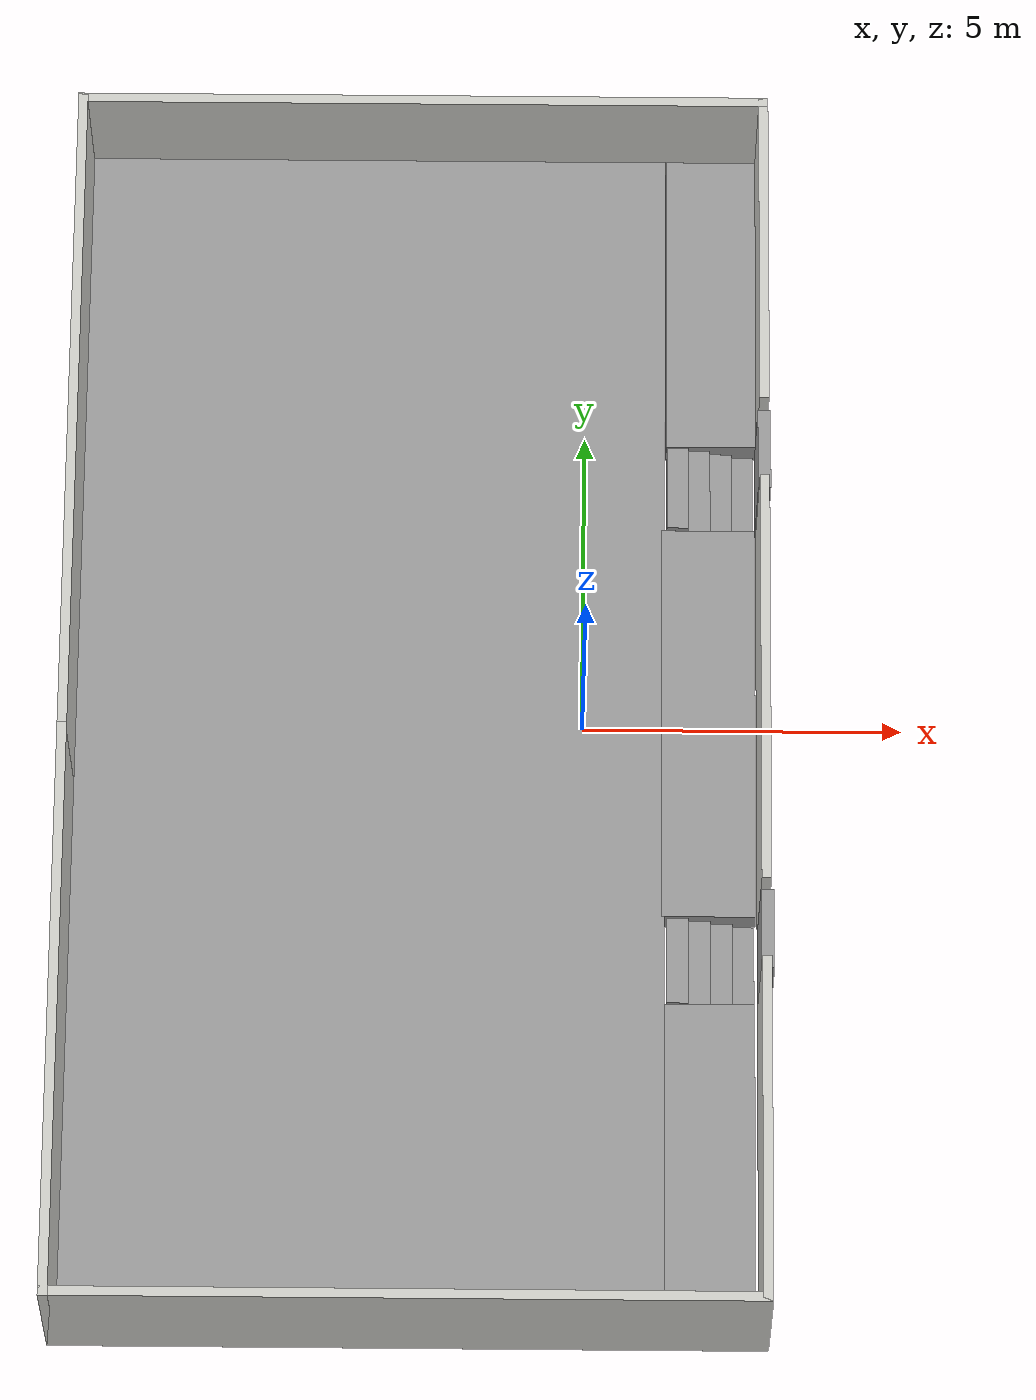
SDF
<?xml version='1.0'?>
<sdf version='1.7'>
  <model name='uni_lab_with_floorjoint'>
    <model name='uni_lab_with_floor'>
      <link name='link_0'>
        <inertial>
          <mass>76.9731</mass>
          <inertia>
            <ixx>2549.54</ixx>
            <ixy>0</ixy>
            <ixz>0</ixz>
            <iyy>549.418</iyy>
            <iyz>0</iyz>
            <izz>3096.72</izz>
          </inertia>
          <pose>0 0 0 0 -0 0</pose>
        </inertial>
        <pose>-3.34953 -0.011442 0.067888 0 -0 0</pose>
        <visual name='visual'>
          <pose>0 0 0 0 -0 0</pose>
          <geometry>
            <box>
              <size>9.2455 19.9323 0.41747</size>
            </box>
          </geometry>
          <material>
            <lighting>1</lighting>
            <script>
              <uri>file://media/materials/scripts/gazebo.material</uri>
              <name>Gazebo/Grey</name>
            </script>
            <shader type='pixel'/>
            <emissive>0 0 0 1</emissive>
          </material>
          <transparency>0</transparency>
          <cast_shadows>1</cast_shadows>
        </visual>
        <collision name='collision'>
          <laser_retro>0</laser_retro>
          <max_contacts>10</max_contacts>
          <pose>0 0 0 0 -0 0</pose>
          <geometry>
            <box>
              <size>9.2455 19.9323 0.41747</size>
            </box>
          </geometry>
          <surface>
            <friction>
              <ode>
                <mu>1</mu>
                <mu2>1</mu2>
                <fdir1>0 0 0</fdir1>
                <slip1>0</slip1>
                <slip2>0</slip2>
              </ode>
              <torsional>
                <coefficient>1</coefficient>
                <patch_radius>0</patch_radius>
                <surface_radius>0</surface_radius>
                <use_patch_radius>1</use_patch_radius>
                <ode>
                  <slip>0</slip>
                </ode>
              </torsional>
            </friction>
            <bounce>
              <restitution_coefficient>0</restitution_coefficient>
              <threshold>1e+06</threshold>
            </bounce>
            <contact>
              <collide_without_contact>0</collide_without_contact>
              <collide_without_contact_bitmask>1</collide_without_contact_bitmask>
              <collide_bitmask>1</collide_bitmask>
              <ode>
                <soft_cfm>0</soft_cfm>
                <soft_erp>0.2</soft_erp>
                <kp>1e+13</kp>
                <kd>1</kd>
                <max_vel>0.01</max_vel>
                <min_depth>0</min_depth>
              </ode>
              <bullet>
                <split_impulse>1</split_impulse>
                <split_impulse_penetration_threshold>-0.01</split_impulse_penetration_threshold>
                <soft_cfm>0</soft_cfm>
                <soft_erp>0.2</soft_erp>
                <kp>1e+13</kp>
                <kd>1</kd>
              </bullet>
            </contact>
          </surface>
        </collision>
      </link>
      <link name='link_1'>
        <inertial>
          <mass>4.46066</mass>
          <inertia>
            <ixx>15.9954</ixx>
            <ixy>0</ixy>
            <ixz>0</ixz>
            <iyy>0.881403</iyy>
            <iyz>0</iyz>
            <izz>16.7164</izz>
          </inertia>
          <pose>0 0 0 0 -0 0</pose>
        </inertial>
        <pose>1.95775 0.035183 0.061316 0 -0 0</pose>
        <visual name='visual'>
          <pose>0 0 0 0 -0 0</pose>
          <geometry>
            <box>
              <size>1.46816 6.5433 0.464388</size>
            </box>
          </geometry>
          <material>
            <lighting>1</lighting>
            <script>
              <uri>file://media/materials/scripts/gazebo.material</uri>
              <name>Gazebo/Grey</name>
            </script>
            <shader type='pixel'/>
            <emissive>0 0 0 1</emissive>
          </material>
          <transparency>0</transparency>
          <cast_shadows>1</cast_shadows>
        </visual>
        <collision name='collision'>
          <laser_retro>0</laser_retro>
          <max_contacts>10</max_contacts>
          <pose>0 0 0 0 -0 0</pose>
          <geometry>
            <box>
              <size>1.46816 6.5433 0.464388</size>
            </box>
          </geometry>
          <surface>
            <friction>
              <ode>
                <mu>1</mu>
                <mu2>1</mu2>
                <fdir1>0 0 0</fdir1>
                <slip1>0</slip1>
                <slip2>0</slip2>
              </ode>
              <torsional>
                <coefficient>1</coefficient>
                <patch_radius>0</patch_radius>
                <surface_radius>0</surface_radius>
                <use_patch_radius>1</use_patch_radius>
                <ode>
                  <slip>0</slip>
                </ode>
              </torsional>
            </friction>
            <bounce>
              <restitution_coefficient>0</restitution_coefficient>
              <threshold>1e+06</threshold>
            </bounce>
            <contact>
              <collide_without_contact>0</collide_without_contact>
              <collide_without_contact_bitmask>1</collide_without_contact_bitmask>
              <collide_bitmask>1</collide_bitmask>
              <ode>
                <soft_cfm>0</soft_cfm>
                <soft_erp>0.2</soft_erp>
                <kp>1e+13</kp>
                <kd>1</kd>
                <max_vel>0.01</max_vel>
                <min_depth>0</min_depth>
              </ode>
              <bullet>
                <split_impulse>1</split_impulse>
                <split_impulse_penetration_threshold>-0.01</split_impulse_penetration_threshold>
                <soft_cfm>0</soft_cfm>
                <soft_erp>0.2</soft_erp>
                <kp>1e+13</kp>
                <kd>1</kd>
              </bullet>
            </contact>
          </surface>
        </collision>
      </link>
      <link name='link_2'>
        <inertial>
          <mass>3.90533</mass>
          <inertia>
            <ixx>8.7364</ixx>
            <ixy>0</ixy>
            <ixz>0</ixz>
            <iyy>0.828184</iyy>
            <iyz>0</iyz>
            <izz>9.40191</izz>
          </inertia>
          <pose>0 0 0 0 -0 0</pose>
        </inertial>
        <pose>2.05163 7.35125 0.029583 0 -0 0</pose>
        <visual name='visual'>
          <pose>0 0 0 0 -0 0</pose>
          <geometry>
            <box>
              <size>1.51487 5.15699 0.499937</size>
            </box>
          </geometry>
          <material>
            <lighting>1</lighting>
            <script>
              <uri>file://media/materials/scripts/gazebo.material</uri>
              <name>Gazebo/Grey</name>
            </script>
            <shader type='pixel'/>
          </material>
          <transparency>0</transparency>
          <cast_shadows>1</cast_shadows>
        </visual>
        <collision name='collision'>
          <laser_retro>0</laser_retro>
          <max_contacts>10</max_contacts>
          <pose>0 0 0 0 -0 0</pose>
          <geometry>
            <box>
              <size>1.51487 5.15699 0.499937</size>
            </box>
          </geometry>
          <surface>
            <friction>
              <ode>
                <mu>1</mu>
                <mu2>1</mu2>
                <fdir1>0 0 0</fdir1>
                <slip1>0</slip1>
                <slip2>0</slip2>
              </ode>
              <torsional>
                <coefficient>1</coefficient>
                <patch_radius>0</patch_radius>
                <surface_radius>0</surface_radius>
                <use_patch_radius>1</use_patch_radius>
                <ode>
                  <slip>0</slip>
                </ode>
              </torsional>
            </friction>
            <bounce>
              <restitution_coefficient>0</restitution_coefficient>
              <threshold>1e+06</threshold>
            </bounce>
            <contact>
              <collide_without_contact>0</collide_without_contact>
              <collide_without_contact_bitmask>1</collide_without_contact_bitmask>
              <collide_bitmask>1</collide_bitmask>
              <ode>
                <soft_cfm>0</soft_cfm>
                <soft_erp>0.2</soft_erp>
                <kp>1e+13</kp>
                <kd>1</kd>
                <max_vel>0.01</max_vel>
                <min_depth>0</min_depth>
              </ode>
              <bullet>
                <split_impulse>1</split_impulse>
                <split_impulse_penetration_threshold>-0.01</split_impulse_penetration_threshold>
                <soft_cfm>0</soft_cfm>
                <soft_erp>0.2</soft_erp>
                <kp>1e+13</kp>
                <kd>1</kd>
              </bullet>
            </contact>
          </surface>
        </collision>
      </link>
      <link name='link_3'>
        <inertial>
          <mass>3.1541</mass>
          <inertia>
            <ixx>7.36274</ixx>
            <ixy>0</ixy>
            <ixz>0</ixz>
            <iyy>0.566125</iyy>
            <iyz>0</iyz>
            <izz>7.83361</izz>
          </inertia>
          <pose>0 0 0 0 -0 0</pose>
        </inertial>
        <pose>1.96654 -7.30469 0.040577 0 -0 0</pose>
        <visual name='visual'>
          <pose>0 0 0 0 -0 0</pose>
          <geometry>
            <box>
              <size>1.40452 5.2755 0.425672</size>
            </box>
          </geometry>
          <material>
            <lighting>1</lighting>
            <script>
              <uri>file://media/materials/scripts/gazebo.material</uri>
              <name>Gazebo/Grey</name>
            </script>
            <shader type='pixel'/>
          </material>
          <transparency>0</transparency>
          <cast_shadows>1</cast_shadows>
        </visual>
        <collision name='collision'>
          <laser_retro>0</laser_retro>
          <max_contacts>10</max_contacts>
          <pose>0 0 0 0 -0 0</pose>
          <geometry>
            <box>
              <size>1.40452 5.2755 0.425672</size>
            </box>
          </geometry>
          <surface>
            <friction>
              <ode>
                <mu>1</mu>
                <mu2>1</mu2>
                <fdir1>0 0 0</fdir1>
                <slip1>0</slip1>
                <slip2>0</slip2>
              </ode>
              <torsional>
                <coefficient>1</coefficient>
                <patch_radius>0</patch_radius>
                <surface_radius>0</surface_radius>
                <use_patch_radius>1</use_patch_radius>
                <ode>
                  <slip>0</slip>
                </ode>
              </torsional>
            </friction>
            <bounce>
              <restitution_coefficient>0</restitution_coefficient>
              <threshold>1e+06</threshold>
            </bounce>
            <contact>
              <collide_without_contact>0</collide_without_contact>
              <collide_without_contact_bitmask>1</collide_without_contact_bitmask>
              <collide_bitmask>1</collide_bitmask>
              <ode>
                <soft_cfm>0</soft_cfm>
                <soft_erp>0.2</soft_erp>
                <kp>1e+13</kp>
                <kd>1</kd>
                <max_vel>0.01</max_vel>
                <min_depth>0</min_depth>
              </ode>
              <bullet>
                <split_impulse>1</split_impulse>
                <split_impulse_penetration_threshold>-0.01</split_impulse_penetration_threshold>
                <soft_cfm>0</soft_cfm>
                <soft_erp>0.2</soft_erp>
                <kp>1e+13</kp>
                <kd>1</kd>
              </bullet>
            </contact>
          </surface>
        </collision>
      </link>
      <model name='uni_lab'>
        <pose>-2.6264 -0.070305 -0.199364 0 -0 0</pose>
        <link name='Door_0'>
          <collision name='Door_0_Collision'>
            <geometry>
              <box>
                <size>1.27502 0.2 2</size>
              </box>
            </geometry>
            <pose>0 0 1 0 -0 0</pose>
          </collision>
          <visual name='Door_0_Visual'>
            <pose>0 0 1 0 -0 0</pose>
            <geometry>
              <box>
                <size>1.27502 0.2 2</size>
              </box>
            </geometry>
            <material>
              <script>
                <uri>file://media/materials/scripts/gazebo.material</uri>
                <name>Gazebo/Grey</name>
              </script>
            </material>
          </visual>
          <pose>5.45453 -3.91442 0 0 -0 1.57588</pose>
        </link>
        <link name='Door_1'>
          <collision name='Door_1_Collision'>
            <geometry>
              <box>
                <size>1.32225 0.2 2</size>
              </box>
            </geometry>
            <pose>0 0 1 0 -0 0</pose>
          </collision>
          <visual name='Door_1_Visual'>
            <pose>0 0 1 0 -0 0</pose>
            <geometry>
              <box>
                <size>1.32225 0.2 2</size>
              </box>
            </geometry>
            <material>
              <script>
                <uri>file://media/materials/scripts/gazebo.material</uri>
                <name>Gazebo/Grey</name>
              </script>
            </material>
          </visual>
          <pose>5.43535 4.13457 0 0 -0 1.57249</pose>
        </link>
        <link name='Stairs_5'>
          <visual name='Stairs_5_Visual_0'>
            <pose>5.13269 4.12145 0.0625 0 -0 -1.5708</pose>
            <geometry>
              <box>
                <size>1.39 0.3425 0.125</size>
              </box>
            </geometry>
            <material>
              <script>
                <uri>file://media/materials/scripts/gazebo.material</uri>
                <name>Gazebo/Grey</name>
              </script>
              <ambient>1 1 1 1</ambient>
            </material>
            <meta>
              <layer>0</layer>
            </meta>
          </visual>
          <collision name='Stairs_5_Collision_0'>
            <geometry>
              <box>
                <size>1.39 0.3425 0.125</size>
              </box>
            </geometry>
            <pose>5.13269 4.12145 0.0625 0 -0 -1.5708</pose>
          </collision>
          <visual name='Stairs_5_Visual_1'>
            <pose>4.79019 4.12145 0.1875 0 -0 -1.5708</pose>
            <geometry>
              <box>
                <size>1.39 0.3425 0.125</size>
              </box>
            </geometry>
            <material>
              <script>
                <uri>file://media/materials/scripts/gazebo.material</uri>
                <name>Gazebo/Grey</name>
              </script>
              <ambient>1 1 1 1</ambient>
            </material>
            <meta>
              <layer>0</layer>
            </meta>
          </visual>
          <collision name='Stairs_5_Collision_1'>
            <geometry>
              <box>
                <size>1.39 0.3425 0.125</size>
              </box>
            </geometry>
            <pose>4.79019 4.12145 0.1875 0 -0 -1.5708</pose>
          </collision>
          <visual name='Stairs_5_Visual_2'>
            <pose>4.44769 4.12145 0.3125 0 -0 -1.5708</pose>
            <geometry>
              <box>
                <size>1.39 0.3425 0.125</size>
              </box>
            </geometry>
            <material>
              <script>
                <uri>file://media/materials/scripts/gazebo.material</uri>
                <name>Gazebo/Grey</name>
              </script>
              <ambient>1 1 1 1</ambient>
            </material>
            <meta>
              <layer>0</layer>
            </meta>
          </visual>
          <collision name='Stairs_5_Collision_2'>
            <geometry>
              <box>
                <size>1.39 0.3425 0.125</size>
              </box>
            </geometry>
            <pose>4.44769 4.12145 0.3125 0 -0 -1.5708</pose>
          </collision>
          <visual name='Stairs_5_Visual_3'>
            <pose>4.10519 4.12145 0.4375 0 -0 -1.5708</pose>
            <geometry>
              <box>
                <size>1.39 0.3425 0.125</size>
              </box>
            </geometry>
            <material>
              <script>
                <uri>file://media/materials/scripts/gazebo.material</uri>
                <name>Gazebo/Grey</name>
              </script>
              <ambient>1 1 1 1</ambient>
            </material>
            <meta>
              <layer>0</layer>
            </meta>
          </visual>
          <collision name='Stairs_5_Collision_3'>
            <geometry>
              <box>
                <size>1.39 0.3425 0.125</size>
              </box>
            </geometry>
            <pose>4.10519 4.12145 0.4375 0 -0 -1.5708</pose>
          </collision>
        </link>
        <link name='Stairs_6'>
          <visual name='Stairs_6_Visual_0'>
            <pose>5.12481 -3.89959 0.0625 0 0 -1.5708</pose>
            <geometry>
              <box>
                <size>1.39 0.3425 0.125</size>
              </box>
            </geometry>
            <material>
              <script>
                <uri>file://media/materials/scripts/gazebo.material</uri>
                <name>Gazebo/Grey</name>
              </script>
              <ambient>1 1 1 1</ambient>
            </material>
            <meta>
              <layer>0</layer>
            </meta>
          </visual>
          <collision name='Stairs_6_Collision_0'>
            <geometry>
              <box>
                <size>1.39 0.3425 0.125</size>
              </box>
            </geometry>
            <pose>5.12481 -3.89959 0.0625 0 0 -1.5708</pose>
          </collision>
          <visual name='Stairs_6_Visual_1'>
            <pose>4.78231 -3.89959 0.1875 0 0 -1.5708</pose>
            <geometry>
              <box>
                <size>1.39 0.3425 0.125</size>
              </box>
            </geometry>
            <material>
              <script>
                <uri>file://media/materials/scripts/gazebo.material</uri>
                <name>Gazebo/Grey</name>
              </script>
              <ambient>1 1 1 1</ambient>
            </material>
            <meta>
              <layer>0</layer>
            </meta>
          </visual>
          <collision name='Stairs_6_Collision_1'>
            <geometry>
              <box>
                <size>1.39 0.3425 0.125</size>
              </box>
            </geometry>
            <pose>4.78231 -3.89959 0.1875 0 0 -1.5708</pose>
          </collision>
          <visual name='Stairs_6_Visual_2'>
            <pose>4.43981 -3.89959 0.3125 0 0 -1.5708</pose>
            <geometry>
              <box>
                <size>1.39 0.3425 0.125</size>
              </box>
            </geometry>
            <material>
              <script>
                <uri>file://media/materials/scripts/gazebo.material</uri>
                <name>Gazebo/Grey</name>
              </script>
              <ambient>1 1 1 1</ambient>
            </material>
            <meta>
              <layer>0</layer>
            </meta>
          </visual>
          <collision name='Stairs_6_Collision_2'>
            <geometry>
              <box>
                <size>1.39 0.3425 0.125</size>
              </box>
            </geometry>
            <pose>4.43981 -3.89959 0.3125 0 0 -1.5708</pose>
          </collision>
          <visual name='Stairs_6_Visual_3'>
            <pose>4.09731 -3.89959 0.4375 0 0 -1.5708</pose>
            <geometry>
              <box>
                <size>1.39 0.3425 0.125</size>
              </box>
            </geometry>
            <material>
              <script>
                <uri>file://media/materials/scripts/gazebo.material</uri>
                <name>Gazebo/Grey</name>
              </script>
              <ambient>1 1 1 1</ambient>
            </material>
            <meta>
              <layer>0</layer>
            </meta>
          </visual>
          <collision name='Stairs_6_Collision_3'>
            <geometry>
              <box>
                <size>1.39 0.3425 0.125</size>
              </box>
            </geometry>
            <pose>4.09731 -3.89959 0.4375 0 0 -1.5708</pose>
          </collision>
        </link>
        <link name='Wall_11'>
          <collision name='Wall_11_Collision'>
            <geometry>
              <box>
                <size>11 0.15 2.5</size>
              </box>
            </geometry>
            <pose>0 0 1.25 0 -0 0</pose>
          </collision>
          <visual name='Wall_11_Visual'>
            <pose>0 0 1.25 0 -0 0</pose>
            <geometry>
              <box>
                <size>11 0.15 2.5</size>
              </box>
            </geometry>
            <material>
              <script>
                <uri>file://media/materials/scripts/gazebo.material</uri>
                <name>Gazebo/CeilingTiled</name>
              </script>
              <ambient>1 1 1 1</ambient>
            </material>
            <meta>
              <layer>0</layer>
            </meta>
          </visual>
          <pose>-9.1e-05 9.975 0 0 -0 0</pose>
        </link>
        <link name='Wall_13'>
          <collision name='Wall_13_Collision'>
            <geometry>
              <box>
                <size>5.5 0.15 2.5</size>
              </box>
            </geometry>
            <pose>0 0 1.25 0 -0 0</pose>
          </collision>
          <visual name='Wall_13_Visual'>
            <pose>0 0 1.25 0 -0 0</pose>
            <geometry>
              <box>
                <size>5.5 0.15 2.5</size>
              </box>
            </geometry>
            <material>
              <script>
                <uri>file://media/materials/scripts/gazebo.material</uri>
                <name>Gazebo/CeilingTiled</name>
              </script>
              <ambient>1 1 1 1</ambient>
            </material>
            <meta>
              <layer>0</layer>
            </meta>
          </visual>
          <pose>5.42491 -7.3 0 0 -0 1.5708</pose>
        </link>
        <link name='Wall_15'>
          <collision name='Wall_15_Collision'>
            <geometry>
              <box>
                <size>5.25 0.15 2.5</size>
              </box>
            </geometry>
            <pose>0 0 1.25 0 -0 0</pose>
          </collision>
          <visual name='Wall_15_Visual'>
            <pose>0 0 1.25 0 -0 0</pose>
            <geometry>
              <box>
                <size>5.25 0.15 2.5</size>
              </box>
            </geometry>
            <material>
              <script>
                <uri>file://media/materials/scripts/gazebo.material</uri>
                <name>Gazebo/CeilingTiled</name>
              </script>
              <ambient>1 1 1 1</ambient>
            </material>
            <meta>
              <layer>0</layer>
            </meta>
          </visual>
          <pose>5.42491 7.425 0 0 -0 -1.5708</pose>
        </link>
        <link name='Wall_23'>
          <collision name='Wall_23_Collision'>
            <geometry>
              <box>
                <size>6.75 0.15 2.5</size>
              </box>
            </geometry>
            <pose>0 0 1.25 0 -0 0</pose>
          </collision>
          <visual name='Wall_23_Visual'>
            <pose>0 0 1.25 0 -0 0</pose>
            <geometry>
              <box>
                <size>6.75 0.15 2.5</size>
              </box>
            </geometry>
            <material>
              <script>
                <uri>file://media/materials/scripts/gazebo.material</uri>
                <name>Gazebo/CeilingTiled</name>
              </script>
              <ambient>1 1 1 1</ambient>
            </material>
            <meta>
              <layer>0</layer>
            </meta>
          </visual>
          <pose>5.42509 0.096254 0 0 -0 -1.5708</pose>
        </link>
        <link name='Wall_5'>
          <collision name='Wall_5_Collision'>
            <geometry>
              <box>
                <size>9.25 0.15 2.5</size>
              </box>
            </geometry>
            <pose>0 0 1.25 0 -0 0</pose>
          </collision>
          <visual name='Wall_5_Visual'>
            <pose>0 0 1.25 0 -0 0</pose>
            <geometry>
              <box>
                <size>9.25 0.15 2.5</size>
              </box>
            </geometry>
            <material>
              <script>
                <uri>file://media/materials/scripts/gazebo.material</uri>
                <name>Gazebo/CeilingTiled</name>
              </script>
              <ambient>1 1 1 1</ambient>
            </material>
            <meta>
              <layer>0</layer>
            </meta>
          </visual>
          <pose>-5.42509 -5.425 0 0 -0 -1.5708</pose>
        </link>
        <link name='Wall_7'>
          <collision name='Wall_7_Collision'>
            <geometry>
              <box>
                <size>11 0.15 2.5</size>
              </box>
            </geometry>
            <pose>0 0 1.25 0 -0 0</pose>
          </collision>
          <visual name='Wall_7_Visual'>
            <pose>0 0 1.25 0 -0 0</pose>
            <geometry>
              <box>
                <size>11 0.15 2.5</size>
              </box>
            </geometry>
            <material>
              <script>
                <uri>file://media/materials/scripts/gazebo.material</uri>
                <name>Gazebo/CeilingTiled</name>
              </script>
              <ambient>1 1 1 1</ambient>
            </material>
            <meta>
              <layer>0</layer>
            </meta>
          </visual>
          <pose>-5.42509 4.55 0 0 -0 1.5708</pose>
        </link>
        <link name='Wall_9'>
          <collision name='Wall_9_Collision'>
            <geometry>
              <box>
                <size>11 0.15 2.5</size>
              </box>
            </geometry>
            <pose>0 0 1.25 0 -0 0</pose>
          </collision>
          <visual name='Wall_9_Visual'>
            <pose>0 0 1.25 0 -0 0</pose>
            <geometry>
              <box>
                <size>11 0.15 2.5</size>
              </box>
            </geometry>
            <material>
              <script>
                <uri>file://media/materials/scripts/gazebo.material</uri>
                <name>Gazebo/CeilingTiled</name>
              </script>
              <ambient>1 1 1 1</ambient>
            </material>
            <meta>
              <layer>0</layer>
            </meta>
          </visual>
          <pose>-9.1e-05 -9.975 0 0 -0 0</pose>
        </link>
        <static>1</static>
      </model>
      <static>0</static>
      <allow_auto_disable>1</allow_auto_disable>
      <pose>2e-06 -2e-06 0 0 -0 0</pose>
    </model>
    <joint name='link_0_JOINT_0' type='fixed'>
      <parent>uni_lab_with_floor::link_0</parent>
      <child>uni_lab_with_floor::link_1</child>
      <pose>0 0 0 0 -0 0</pose>
      <physics>
        <ode>
          <limit>
            <cfm>0</cfm>
            <erp>0.2</erp>
          </limit>
          <suspension>
            <cfm>0</cfm>
            <erp>0.2</erp>
          </suspension>
        </ode>
      </physics>
    </joint>
    <joint name='link_0_JOINT_1' type='fixed'>
      <parent>uni_lab_with_floor::link_0</parent>
      <child>uni_lab_with_floor::link_2</child>
      <pose>0 0 0 0 -0 0</pose>
      <physics>
        <ode>
          <limit>
            <cfm>0</cfm>
            <erp>0.2</erp>
          </limit>
          <suspension>
            <cfm>0</cfm>
            <erp>0.2</erp>
          </suspension>
        </ode>
      </physics>
    </joint>
    <joint name='link_0_JOINT_2' type='fixed'>
      <parent>uni_lab_with_floor::link_0</parent>
      <child>uni_lab_with_floor::link_3</child>
      <pose>0 0 0 0 -0 0</pose>
      <physics>
        <ode>
          <limit>
            <cfm>0</cfm>
            <erp>0.2</erp>
          </limit>
          <suspension>
            <cfm>0</cfm>
            <erp>0.2</erp>
          </suspension>
        </ode>
      </physics>
    </joint>
    <joint name='link_0_JOINT_3' type='fixed'>
      <parent>uni_lab_with_floor::link_0</parent>
      <child>uni_lab_with_floor::uni_lab::Wall_11</child>
      <pose>0 0 0 0 -0 0</pose>
      <physics>
        <ode>
          <limit>
            <cfm>0</cfm>
            <erp>0.2</erp>
          </limit>
          <suspension>
            <cfm>0</cfm>
            <erp>0.2</erp>
          </suspension>
        </ode>
      </physics>
    </joint>
    <joint name='link_0_JOINT_4' type='fixed'>
      <parent>uni_lab_with_floor::link_0</parent>
      <child>uni_lab_with_floor::uni_lab::Wall_7</child>
      <pose>0 0 0 0 -0 0</pose>
      <physics>
        <ode>
          <limit>
            <cfm>0</cfm>
            <erp>0.2</erp>
          </limit>
          <suspension>
            <cfm>0</cfm>
            <erp>0.2</erp>
          </suspension>
        </ode>
      </physics>
    </joint>
    <joint name='link_0_JOINT_5' type='fixed'>
      <parent>uni_lab_with_floor::link_0</parent>
      <child>uni_lab_with_floor::uni_lab::Wall_5</child>
      <pose>0 0 0 0 -0 0</pose>
      <physics>
        <ode>
          <limit>
            <cfm>0</cfm>
            <erp>0.2</erp>
          </limit>
          <suspension>
            <cfm>0</cfm>
            <erp>0.2</erp>
          </suspension>
        </ode>
      </physics>
    </joint>
    <joint name='link_1_JOINT_6' type='fixed'>
      <parent>uni_lab_with_floor::link_1</parent>
      <child>uni_lab_with_floor::uni_lab::Wall_23</child>
      <pose>0 0 0 0 -0 0</pose>
      <physics>
        <ode>
          <limit>
            <cfm>0</cfm>
            <erp>0.2</erp>
          </limit>
          <suspension>
            <cfm>0</cfm>
            <erp>0.2</erp>
          </suspension>
        </ode>
      </physics>
    </joint>
    <joint name='link_2_JOINT_8' type='fixed'>
      <parent>uni_lab_with_floor::link_2</parent>
      <child>uni_lab_with_floor::uni_lab::Wall_15</child>
      <pose>0 0 0 0 -0 0</pose>
      <physics>
        <ode>
          <limit>
            <cfm>0</cfm>
            <erp>0.2</erp>
          </limit>
          <suspension>
            <cfm>0</cfm>
            <erp>0.2</erp>
          </suspension>
        </ode>
      </physics>
    </joint>
    <joint name='link_3_JOINT_7' type='fixed'>
      <parent>uni_lab_with_floor::link_3</parent>
      <child>uni_lab_with_floor::uni_lab::Wall_13</child>
      <pose>0 0 0 0 -0 0</pose>
      <physics>
        <ode>
          <limit>
            <cfm>0</cfm>
            <erp>0.2</erp>
          </limit>
          <suspension>
            <cfm>0</cfm>
            <erp>0.2</erp>
          </suspension>
        </ode>
      </physics>
    </joint>
    <static>0</static>
    <allow_auto_disable>1</allow_auto_disable>
  </model>
</sdf>
